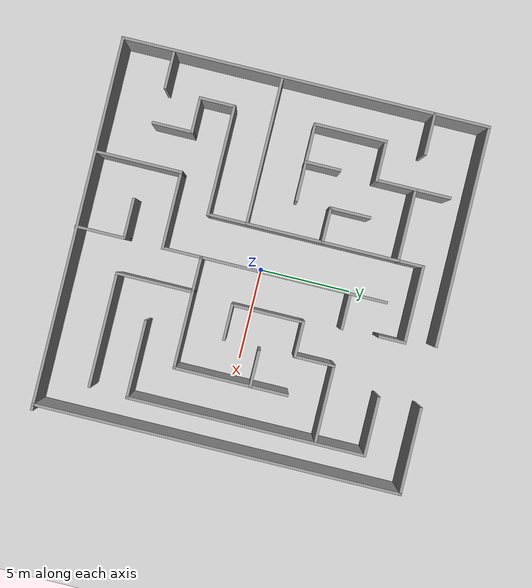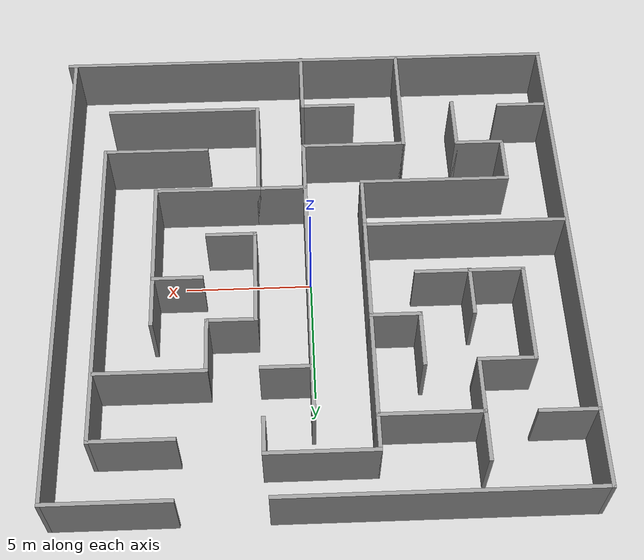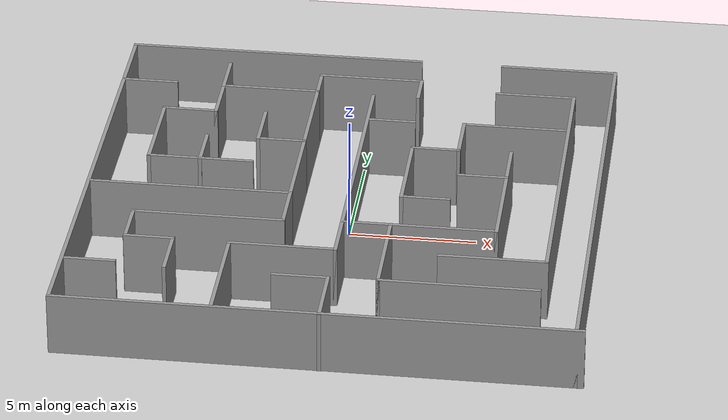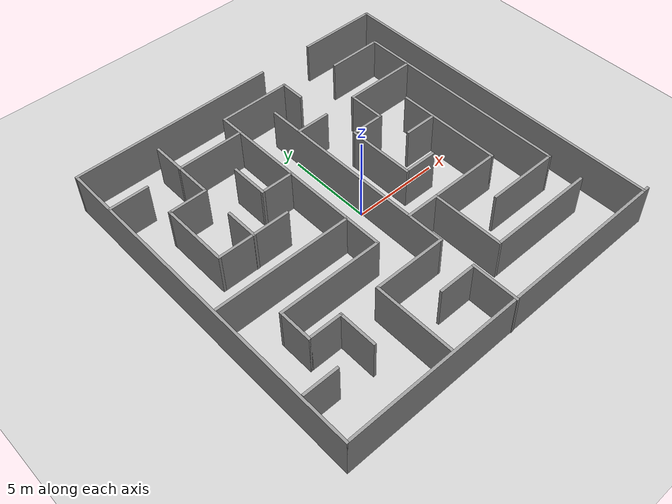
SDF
<sdf version="1.4">
   <world name="default">

     <scene>
       <ambient>0.4 0.4 0.4 1</ambient>
       <background>0.7 0.7 0.7 1</background>
       <shadows>true</shadows>
     </scene>

     <!-- A global light source -->
     <include>
       <uri>model://sun</uri>
     </include>

     <!-- A ground plane -->
     <include>
       <uri>model://ground_plane</uri>
     </include>

     <!-- Maze -->
     <include>
       <uri>model://complex_maze2</uri>
     </include>

     <physics type="ode">
       <real_time_update_rate>1000.0</real_time_update_rate>
       <max_step_size>0.001</max_step_size>
       <real_time_factor>1</real_time_factor>
       <ode>
         <solver>
           <type>quick</type>
           <iters>150</iters>
           <precon_iters>0</precon_iters>
           <sor>1.400000</sor>
           <use_dynamic_moi_rescaling>1</use_dynamic_moi_rescaling>
         </solver>
         <constraints>
           <cfm>0.00001</cfm>
           <erp>0.2</erp>
           <contact_max_correcting_vel>2000.000000</contact_max_correcting_vel>
           <contact_surface_layer>0.01000</contact_surface_layer>
         </constraints>
       </ode>
     </physics>

   </world>

 </sdf>

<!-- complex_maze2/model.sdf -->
<sdf version='1.7'>
  <model name='Untitled'>
    <pose>-0.090093 -0.035228 0 0 -0 0</pose>
    <link name='Wall_11'>
      <collision name='Wall_11_Collision'>
        <geometry>
          <box>
            <size>4 0.15 2.5</size>
          </box>
        </geometry>
        <pose>0 0 1.25 0 -0 0</pose>
      </collision>
      <visual name='Wall_11_Visual'>
        <pose>0 0 1.25 0 -0 0</pose>
        <geometry>
          <box>
            <size>4 0.15 2.5</size>
          </box>
        </geometry>
        <material>
          <script>
            <uri>file://media/materials/scripts/gazebo.material</uri>
            <name>Gazebo/Grey</name>
          </script>
          <ambient>1 1 1 1</ambient>
        </material>
        <meta>
          <layer>0</layer>
        </meta>
      </visual>
      <pose>-4.00531 6.94451 0 0 -0 0</pose>
    </link>
    <link name='Wall_14'>
      <collision name='Wall_14_Collision'>
        <geometry>
          <box>
            <size>2.25 0.15 2.5</size>
          </box>
        </geometry>
        <pose>0 0 1.25 0 -0 0</pose>
      </collision>
      <visual name='Wall_14_Visual'>
        <pose>0 0 1.25 0 -0 0</pose>
        <geometry>
          <box>
            <size>2.25 0.15 2.5</size>
          </box>
        </geometry>
        <material>
          <script>
            <uri>file://media/materials/scripts/gazebo.material</uri>
            <name>Gazebo/Grey</name>
          </script>
          <ambient>1 1 1 1</ambient>
        </material>
        <meta>
          <layer>0</layer>
        </meta>
      </visual>
      <pose>-5.93031 5.89451 0 0 -0 -1.5708</pose>
    </link>
    <link name='Wall_15'>
      <collision name='Wall_15_Collision'>
        <geometry>
          <box>
            <size>2.25 0.15 2.5</size>
          </box>
        </geometry>
        <pose>0 0 1.25 0 -0 0</pose>
      </collision>
      <visual name='Wall_15_Visual'>
        <pose>0 0 1.25 0 -0 0</pose>
        <geometry>
          <box>
            <size>2.25 0.15 2.5</size>
          </box>
        </geometry>
        <material>
          <script>
            <uri>file://media/materials/scripts/gazebo.material</uri>
            <name>Gazebo/Grey</name>
          </script>
          <ambient>1 1 1 1</ambient>
        </material>
        <meta>
          <layer>0</layer>
        </meta>
      </visual>
      <pose>-6.98031 4.84451 0 0 -0 3.14159</pose>
    </link>
    <link name='Wall_16'>
      <collision name='Wall_16_Collision'>
        <geometry>
          <box>
            <size>4 0.15 2.5</size>
          </box>
        </geometry>
        <pose>0 0 1.25 0 -0 0</pose>
      </collision>
      <visual name='Wall_16_Visual'>
        <pose>0 0 1.25 0 -0 0</pose>
        <geometry>
          <box>
            <size>4 0.15 2.5</size>
          </box>
        </geometry>
        <material>
          <script>
            <uri>file://media/materials/scripts/gazebo.material</uri>
            <name>Gazebo/Grey</name>
          </script>
          <ambient>1 1 1 1</ambient>
        </material>
        <meta>
          <layer>0</layer>
        </meta>
      </visual>
      <pose>-8.03031 2.91951 0 0 -0 -1.5708</pose>
    </link>
    <link name='Wall_17'>
      <collision name='Wall_17_Collision'>
        <geometry>
          <box>
            <size>4.25 0.15 2.5</size>
          </box>
        </geometry>
        <pose>0 0 1.25 0 -0 0</pose>
      </collision>
      <visual name='Wall_17_Visual'>
        <pose>0 0 1.25 0 -0 0</pose>
        <geometry>
          <box>
            <size>4.25 0.15 2.5</size>
          </box>
        </geometry>
        <material>
          <script>
            <uri>file://media/materials/scripts/gazebo.material</uri>
            <name>Gazebo/Grey</name>
          </script>
          <ambient>1 1 1 1</ambient>
        </material>
        <meta>
          <layer>0</layer>
        </meta>
      </visual>
      <pose>-5.98031 0.994513 0 0 -0 0</pose>
    </link>
    <link name='Wall_19'>
      <collision name='Wall_19_Collision'>
        <geometry>
          <box>
            <size>2 0.15 2.5</size>
          </box>
        </geometry>
        <pose>0 0 1.25 0 -0 0</pose>
      </collision>
      <visual name='Wall_19_Visual'>
        <pose>0 0 1.25 0 -0 0</pose>
        <geometry>
          <box>
            <size>2 0.15 2.5</size>
          </box>
        </geometry>
        <material>
          <script>
            <uri>file://media/materials/scripts/gazebo.material</uri>
            <name>Gazebo/Grey</name>
          </script>
          <ambient>1 1 1 1</ambient>
        </material>
        <meta>
          <layer>0</layer>
        </meta>
      </visual>
      <pose>-5.98381 1.89982 0 0 -0 -1.5708</pose>
    </link>
    <link name='Wall_2'>
      <collision name='Wall_2_Collision'>
        <geometry>
          <box>
            <size>20 0.15 2.5</size>
          </box>
        </geometry>
        <pose>0 0 1.25 0 -0 0</pose>
      </collision>
      <visual name='Wall_2_Visual'>
        <pose>0 0 1.25 0 -0 0</pose>
        <geometry>
          <box>
            <size>20 0.15 2.5</size>
          </box>
        </geometry>
        <material>
          <script>
            <uri>file://media/materials/scripts/gazebo.material</uri>
            <name>Gazebo/Grey</name>
          </script>
          <ambient>1 1 1 1</ambient>
        </material>
        <meta>
          <layer>0</layer>
        </meta>
      </visual>
      <pose>-10.05 0.015653 0 0 -0 -1.5708</pose>
    </link>
    <link name='Wall_25'>
      <collision name='Wall_25_Collision'>
        <geometry>
          <box>
            <size>4.25 0.15 2.5</size>
          </box>
        </geometry>
        <pose>0 0 1.25 0 -0 0</pose>
      </collision>
      <visual name='Wall_25_Visual'>
        <pose>0 0 1.25 0 -0 0</pose>
        <geometry>
          <box>
            <size>4.25 0.15 2.5</size>
          </box>
        </geometry>
        <material>
          <script>
            <uri>file://media/materials/scripts/gazebo.material</uri>
            <name>Gazebo/Grey</name>
          </script>
          <ambient>1 1 1 1</ambient>
        </material>
        <meta>
          <layer>0</layer>
        </meta>
      </visual>
      <pose>-2.08031 4.89451 0 0 -0 -1.5708</pose>
    </link>
    <link name='Wall_27'>
      <collision name='Wall_27_Collision'>
        <geometry>
          <box>
            <size>2 0.15 2.5</size>
          </box>
        </geometry>
        <pose>0 0 1.25 0 -0 0</pose>
      </collision>
      <visual name='Wall_27_Visual'>
        <pose>0 0 1.25 0 -0 0</pose>
        <geometry>
          <box>
            <size>2 0.15 2.5</size>
          </box>
        </geometry>
        <material>
          <script>
            <uri>file://media/materials/scripts/gazebo.material</uri>
            <name>Gazebo/Grey</name>
          </script>
          <ambient>1 1 1 1</ambient>
        </material>
        <meta>
          <layer>0</layer>
        </meta>
      </visual>
      <pose>-3.00531 2.84451 0 0 -0 3.14159</pose>
    </link>
    <link name='Wall_28'>
      <collision name='Wall_28_Collision'>
        <geometry>
          <box>
            <size>2.25 0.15 2.5</size>
          </box>
        </geometry>
        <pose>0 0 1.25 0 -0 0</pose>
      </collision>
      <visual name='Wall_28_Visual'>
        <pose>0 0 1.25 0 -0 0</pose>
        <geometry>
          <box>
            <size>2.25 0.15 2.5</size>
          </box>
        </geometry>
        <material>
          <script>
            <uri>file://media/materials/scripts/gazebo.material</uri>
            <name>Gazebo/Grey</name>
          </script>
          <ambient>1 1 1 1</ambient>
        </material>
        <meta>
          <layer>0</layer>
        </meta>
      </visual>
      <pose>-3.93031 3.89451 0 0 -0 1.5708</pose>
    </link>
    <link name='Wall_3'>
      <collision name='Wall_3_Collision'>
        <geometry>
          <box>
            <size>20.25 0.15 2.5</size>
          </box>
        </geometry>
        <pose>0 0 1.25 0 -0 0</pose>
      </collision>
      <visual name='Wall_3_Visual'>
        <pose>0 0 1.25 0 -0 0</pose>
        <geometry>
          <box>
            <size>20.25 0.15 2.5</size>
          </box>
        </geometry>
        <material>
          <script>
            <uri>file://media/materials/scripts/gazebo.material</uri>
            <name>Gazebo/Grey</name>
          </script>
          <ambient>1 1 1 1</ambient>
        </material>
        <meta>
          <layer>0</layer>
        </meta>
      </visual>
      <pose>0 -9.90935 0 0 -0 0</pose>
    </link>
    <link name='Wall_30'>
      <collision name='Wall_30_Collision'>
        <geometry>
          <box>
            <size>4.25 0.15 2.5</size>
          </box>
        </geometry>
        <pose>0 0 1.25 0 -0 0</pose>
      </collision>
      <visual name='Wall_30_Visual'>
        <pose>0 0 1.25 0 -0 0</pose>
        <geometry>
          <box>
            <size>4.25 0.15 2.5</size>
          </box>
        </geometry>
        <material>
          <script>
            <uri>file://media/materials/scripts/gazebo.material</uri>
            <name>Gazebo/Grey</name>
          </script>
          <ambient>1 1 1 1</ambient>
        </material>
        <meta>
          <layer>0</layer>
        </meta>
      </visual>
      <pose>-2.08031 0.794513 0 0 -0 -1.5708</pose>
    </link>
    <link name='Wall_31'>
      <collision name='Wall_31_Collision'>
        <geometry>
          <box>
            <size>8 0.15 2.5</size>
          </box>
        </geometry>
        <pose>0 0 1.25 0 -0 0</pose>
      </collision>
      <visual name='Wall_31_Visual'>
        <pose>0 0 1.25 0 -0 0</pose>
        <geometry>
          <box>
            <size>8 0.15 2.5</size>
          </box>
        </geometry>
        <material>
          <script>
            <uri>file://media/materials/scripts/gazebo.material</uri>
            <name>Gazebo/Grey</name>
          </script>
          <ambient>1 1 1 1</ambient>
        </material>
        <meta>
          <layer>0</layer>
        </meta>
      </visual>
      <pose>-6.00531 -1.25549 0 0 -0 3.14159</pose>
    </link>
    <link name='Wall_33'>
      <collision name='Wall_33_Collision'>
        <geometry>
          <box>
            <size>2.25 0.15 2.5</size>
          </box>
        </geometry>
        <pose>0 0 1.25 0 -0 0</pose>
      </collision>
      <visual name='Wall_33_Visual'>
        <pose>0 0 1.25 0 -0 0</pose>
        <geometry>
          <box>
            <size>2.25 0.15 2.5</size>
          </box>
        </geometry>
        <material>
          <script>
            <uri>file://media/materials/scripts/gazebo.material</uri>
            <name>Gazebo/Grey</name>
          </script>
          <ambient>1 1 1 1</ambient>
        </material>
        <meta>
          <layer>0</layer>
        </meta>
      </visual>
      <pose>-2.08031 -2.30549 0 0 -0 -1.5708</pose>
    </link>
    <link name='Wall_34'>
      <collision name='Wall_34_Collision'>
        <geometry>
          <box>
            <size>6 0.15 2.5</size>
          </box>
        </geometry>
        <pose>0 0 1.25 0 -0 0</pose>
      </collision>
      <visual name='Wall_34_Visual'>
        <pose>0 0 1.25 0 -0 0</pose>
        <geometry>
          <box>
            <size>6 0.15 2.5</size>
          </box>
        </geometry>
        <material>
          <script>
            <uri>file://media/materials/scripts/gazebo.material</uri>
            <name>Gazebo/Grey</name>
          </script>
          <ambient>1 1 1 1</ambient>
        </material>
        <meta>
          <layer>0</layer>
        </meta>
      </visual>
      <pose>-5.00531 -3.35549 0 0 -0 3.14159</pose>
    </link>
    <link name='Wall_35'>
      <collision name='Wall_35_Collision'>
        <geometry>
          <box>
            <size>2 0.15 2.5</size>
          </box>
        </geometry>
        <pose>0 0 1.25 0 -0 0</pose>
      </collision>
      <visual name='Wall_35_Visual'>
        <pose>0 0 1.25 0 -0 0</pose>
        <geometry>
          <box>
            <size>2 0.15 2.5</size>
          </box>
        </geometry>
        <material>
          <script>
            <uri>file://media/materials/scripts/gazebo.material</uri>
            <name>Gazebo/Grey</name>
          </script>
          <ambient>1 1 1 1</ambient>
        </material>
        <meta>
          <layer>0</layer>
        </meta>
      </visual>
      <pose>-7.93031 -4.28049 0 0 -0 -1.5708</pose>
    </link>
    <link name='Wall_36'>
      <collision name='Wall_36_Collision'>
        <geometry>
          <box>
            <size>2 0.15 2.5</size>
          </box>
        </geometry>
        <pose>0 0 1.25 0 -0 0</pose>
      </collision>
      <visual name='Wall_36_Visual'>
        <pose>0 0 1.25 0 -0 0</pose>
        <geometry>
          <box>
            <size>2 0.15 2.5</size>
          </box>
        </geometry>
        <material>
          <script>
            <uri>file://media/materials/scripts/gazebo.material</uri>
            <name>Gazebo/Grey</name>
          </script>
          <ambient>1 1 1 1</ambient>
        </material>
        <meta>
          <layer>0</layer>
        </meta>
      </visual>
      <pose>-7.00531 -5.20549 0 0 -0 0</pose>
    </link>
    <link name='Wall_37'>
      <collision name='Wall_37_Collision'>
        <geometry>
          <box>
            <size>2.25 0.15 2.5</size>
          </box>
        </geometry>
        <pose>0 0 1.25 0 -0 0</pose>
      </collision>
      <visual name='Wall_37_Visual'>
        <pose>0 0 1.25 0 -0 0</pose>
        <geometry>
          <box>
            <size>2.25 0.15 2.5</size>
          </box>
        </geometry>
        <material>
          <script>
            <uri>file://media/materials/scripts/gazebo.material</uri>
            <name>Gazebo/Grey</name>
          </script>
          <ambient>1 1 1 1</ambient>
        </material>
        <meta>
          <layer>0</layer>
        </meta>
      </visual>
      <pose>-6.08031 -6.25549 0 0 -0 -1.5708</pose>
    </link>
    <link name='Wall_39'>
      <collision name='Wall_39_Collision'>
        <geometry>
          <box>
            <size>2 0.15 2.5</size>
          </box>
        </geometry>
        <pose>0 0 1.25 0 -0 0</pose>
      </collision>
      <visual name='Wall_39_Visual'>
        <pose>0 0 1.25 0 -0 0</pose>
        <geometry>
          <box>
            <size>2 0.15 2.5</size>
          </box>
        </geometry>
        <material>
          <script>
            <uri>file://media/materials/scripts/gazebo.material</uri>
            <name>Gazebo/Grey</name>
          </script>
          <ambient>1 1 1 1</ambient>
        </material>
        <meta>
          <layer>0</layer>
        </meta>
      </visual>
      <pose>-8.96449 -7.12664 0 0 -0 0</pose>
    </link>
    <link name='Wall_41'>
      <collision name='Wall_41_Collision'>
        <geometry>
          <box>
            <size>2.25 0.15 2.5</size>
          </box>
        </geometry>
        <pose>0 0 1.25 0 -0 0</pose>
      </collision>
      <visual name='Wall_41_Visual'>
        <pose>0 0 1.25 0 -0 0</pose>
        <geometry>
          <box>
            <size>2.25 0.15 2.5</size>
          </box>
        </geometry>
        <material>
          <script>
            <uri>file://media/materials/scripts/gazebo.material</uri>
            <name>Gazebo/Grey</name>
          </script>
          <ambient>1 1 1 1</ambient>
        </material>
        <meta>
          <layer>0</layer>
        </meta>
      </visual>
      <pose>-0.867619 -7.34065 0 0 -0 0</pose>
    </link>
    <link name='Wall_44'>
      <collision name='Wall_44_Collision'>
        <geometry>
          <box>
            <size>2.75 0.15 2.5</size>
          </box>
        </geometry>
        <pose>0 0 1.25 0 -0 0</pose>
      </collision>
      <visual name='Wall_44_Visual'>
        <pose>0 0 1.25 0 -0 0</pose>
        <geometry>
          <box>
            <size>2.75 0.15 2.5</size>
          </box>
        </geometry>
        <material>
          <script>
            <uri>file://media/materials/scripts/gazebo.material</uri>
            <name>Gazebo/Grey</name>
          </script>
          <ambient>1 1 1 1</ambient>
        </material>
        <meta>
          <layer>0</layer>
        </meta>
      </visual>
      <pose>0.182381 -8.64065 0 0 -0 -1.5708</pose>
    </link>
    <link name='Wall_47'>
      <collision name='Wall_47_Collision'>
        <geometry>
          <box>
            <size>4.75 0.15 2.5</size>
          </box>
        </geometry>
        <pose>0 0 1.25 0 -0 0</pose>
      </collision>
      <visual name='Wall_47_Visual'>
        <pose>0 0 1.25 0 -0 0</pose>
        <geometry>
          <box>
            <size>4.75 0.15 2.5</size>
          </box>
        </geometry>
        <material>
          <script>
            <uri>file://media/materials/scripts/gazebo.material</uri>
            <name>Gazebo/Grey</name>
          </script>
          <ambient>1 1 1 1</ambient>
        </material>
        <meta>
          <layer>0</layer>
        </meta>
      </visual>
      <pose>-3.89721 -7.55527 0 0 -0 1.5708</pose>
    </link>
    <link name='Wall_48'>
      <collision name='Wall_48_Collision'>
        <geometry>
          <box>
            <size>4.25 0.15 2.5</size>
          </box>
        </geometry>
        <pose>0 0 1.25 0 -0 0</pose>
      </collision>
      <visual name='Wall_48_Visual'>
        <pose>0 0 1.25 0 -0 0</pose>
        <geometry>
          <box>
            <size>4.25 0.15 2.5</size>
          </box>
        </geometry>
        <material>
          <script>
            <uri>file://media/materials/scripts/gazebo.material</uri>
            <name>Gazebo/Grey</name>
          </script>
          <ambient>1 1 1 1</ambient>
        </material>
        <meta>
          <layer>0</layer>
        </meta>
      </visual>
      <pose>-1.84721 -5.25527 0 0 -0 0</pose>
    </link>
    <link name='Wall_49'>
      <collision name='Wall_49_Collision'>
        <geometry>
          <box>
            <size>12.25 0.15 2.5</size>
          </box>
        </geometry>
        <pose>0 0 1.25 0 -0 0</pose>
      </collision>
      <visual name='Wall_49_Visual'>
        <pose>0 0 1.25 0 -0 0</pose>
        <geometry>
          <box>
            <size>12.25 0.15 2.5</size>
          </box>
        </geometry>
        <material>
          <script>
            <uri>file://media/materials/scripts/gazebo.material</uri>
            <name>Gazebo/Grey</name>
          </script>
          <ambient>1 1 1 1</ambient>
        </material>
        <meta>
          <layer>0</layer>
        </meta>
      </visual>
      <pose>0.202788 0.794728 0 0 -0 1.5708</pose>
    </link>
    <link name='Wall_51'>
      <collision name='Wall_51_Collision'>
        <geometry>
          <box>
            <size>2 0.15 2.5</size>
          </box>
        </geometry>
        <pose>0 0 1.25 0 -0 0</pose>
      </collision>
      <visual name='Wall_51_Visual'>
        <pose>0 0 1.25 0 -0 0</pose>
        <geometry>
          <box>
            <size>2 0.15 2.5</size>
          </box>
        </geometry>
        <material>
          <script>
            <uri>file://media/materials/scripts/gazebo.material</uri>
            <name>Gazebo/Grey</name>
          </script>
          <ambient>1 1 1 1</ambient>
        </material>
        <meta>
          <layer>0</layer>
        </meta>
      </visual>
      <pose>1.14748 4.91142 0 0 -0 0</pose>
    </link>
    <link name='Wall_53'>
      <collision name='Wall_53_Collision'>
        <geometry>
          <box>
            <size>2 0.15 2.5</size>
          </box>
        </geometry>
        <pose>0 0 1.25 0 -0 0</pose>
      </collision>
      <visual name='Wall_53_Visual'>
        <pose>0 0 1.25 0 -0 0</pose>
        <geometry>
          <box>
            <size>2 0.15 2.5</size>
          </box>
        </geometry>
        <material>
          <script>
            <uri>file://media/materials/scripts/gazebo.material</uri>
            <name>Gazebo/Grey</name>
          </script>
          <ambient>1 1 1 1</ambient>
        </material>
        <meta>
          <layer>0</layer>
        </meta>
      </visual>
      <pose>1.14748 -3.16746 0 0 -0 0</pose>
    </link>
    <link name='Wall_54'>
      <collision name='Wall_54_Collision'>
        <geometry>
          <box>
            <size>4.25 0.15 2.5</size>
          </box>
        </geometry>
        <pose>0 0 1.25 0 -0 0</pose>
      </collision>
      <visual name='Wall_54_Visual'>
        <pose>0 0 1.25 0 -0 0</pose>
        <geometry>
          <box>
            <size>4.25 0.15 2.5</size>
          </box>
        </geometry>
        <material>
          <script>
            <uri>file://media/materials/scripts/gazebo.material</uri>
            <name>Gazebo/Grey</name>
          </script>
          <ambient>1 1 1 1</ambient>
        </material>
        <meta>
          <layer>0</layer>
        </meta>
      </visual>
      <pose>2.07248 -5.21746 0 0 -0 -1.5708</pose>
    </link>
    <link name='Wall_55'>
      <collision name='Wall_55_Collision'>
        <geometry>
          <box>
            <size>6.25 0.15 2.5</size>
          </box>
        </geometry>
        <pose>0 0 1.25 0 -0 0</pose>
      </collision>
      <visual name='Wall_55_Visual'>
        <pose>0 0 1.25 0 -0 0</pose>
        <geometry>
          <box>
            <size>6.25 0.15 2.5</size>
          </box>
        </geometry>
        <material>
          <script>
            <uri>file://media/materials/scripts/gazebo.material</uri>
            <name>Gazebo/Grey</name>
          </script>
          <ambient>1 1 1 1</ambient>
        </material>
        <meta>
          <layer>0</layer>
        </meta>
      </visual>
      <pose>5.12248 -7.26746 0 0 -0 0</pose>
    </link>
    <link name='Wall_58'>
      <collision name='Wall_58_Collision'>
        <geometry>
          <box>
            <size>4.25 0.15 2.5</size>
          </box>
        </geometry>
        <pose>0 0 1.25 0 -0 0</pose>
      </collision>
      <visual name='Wall_58_Visual'>
        <pose>0 0 1.25 0 -0 0</pose>
        <geometry>
          <box>
            <size>4.25 0.15 2.5</size>
          </box>
        </geometry>
        <material>
          <script>
            <uri>file://media/materials/scripts/gazebo.material</uri>
            <name>Gazebo/Grey</name>
          </script>
          <ambient>1 1 1 1</ambient>
        </material>
        <meta>
          <layer>0</layer>
        </meta>
      </visual>
      <pose>6.23167 -5.20055 0 0 -0 0</pose>
    </link>
    <link name='Wall_64'>
      <collision name='Wall_64_Collision'>
        <geometry>
          <box>
            <size>4.25 0.15 2.5</size>
          </box>
        </geometry>
        <pose>0 0 1.25 0 -0 0</pose>
      </collision>
      <visual name='Wall_64_Visual'>
        <pose>0 0 1.25 0 -0 0</pose>
        <geometry>
          <box>
            <size>4.25 0.15 2.5</size>
          </box>
        </geometry>
        <material>
          <script>
            <uri>file://media/materials/scripts/gazebo.material</uri>
            <name>Gazebo/Grey</name>
          </script>
          <ambient>1 1 1 1</ambient>
        </material>
        <meta>
          <layer>0</layer>
        </meta>
      </visual>
      <pose>6.14435 4.96492 0 0 -0 3.14159</pose>
    </link>
    <link name='Wall_65'>
      <collision name='Wall_65_Collision'>
        <geometry>
          <box>
            <size>2.25 0.15 2.5</size>
          </box>
        </geometry>
        <pose>0 0 1.25 0 -0 0</pose>
      </collision>
      <visual name='Wall_65_Visual'>
        <pose>0 0 1.25 0 -0 0</pose>
        <geometry>
          <box>
            <size>2.25 0.15 2.5</size>
          </box>
        </geometry>
        <material>
          <script>
            <uri>file://media/materials/scripts/gazebo.material</uri>
            <name>Gazebo/Grey</name>
          </script>
          <ambient>1 1 1 1</ambient>
        </material>
        <meta>
          <layer>0</layer>
        </meta>
      </visual>
      <pose>4.09435 3.91492 0 0 -0 -1.5708</pose>
    </link>
    <link name='Wall_66'>
      <collision name='Wall_66_Collision'>
        <geometry>
          <box>
            <size>2 0.15 2.5</size>
          </box>
        </geometry>
        <pose>0 0 1.25 0 -0 0</pose>
      </collision>
      <visual name='Wall_66_Visual'>
        <pose>0 0 1.25 0 -0 0</pose>
        <geometry>
          <box>
            <size>2 0.15 2.5</size>
          </box>
        </geometry>
        <material>
          <script>
            <uri>file://media/materials/scripts/gazebo.material</uri>
            <name>Gazebo/Grey</name>
          </script>
          <ambient>1 1 1 1</ambient>
        </material>
        <meta>
          <layer>0</layer>
        </meta>
      </visual>
      <pose>3.16935 2.86492 0 0 -0 3.14159</pose>
    </link>
    <link name='Wall_67'>
      <collision name='Wall_67_Collision'>
        <geometry>
          <box>
            <size>4 0.15 2.5</size>
          </box>
        </geometry>
        <pose>0 0 1.25 0 -0 0</pose>
      </collision>
      <visual name='Wall_67_Visual'>
        <pose>0 0 1.25 0 -0 0</pose>
        <geometry>
          <box>
            <size>4 0.15 2.5</size>
          </box>
        </geometry>
        <material>
          <script>
            <uri>file://media/materials/scripts/gazebo.material</uri>
            <name>Gazebo/Grey</name>
          </script>
          <ambient>1 1 1 1</ambient>
        </material>
        <meta>
          <layer>0</layer>
        </meta>
      </visual>
      <pose>2.24435 0.939921 0 0 -0 -1.5708</pose>
    </link>
    <link name='Wall_68'>
      <collision name='Wall_68_Collision'>
        <geometry>
          <box>
            <size>2 0.15 2.5</size>
          </box>
        </geometry>
        <pose>0 0 1.25 0 -0 0</pose>
      </collision>
      <visual name='Wall_68_Visual'>
        <pose>0 0 1.25 0 -0 0</pose>
        <geometry>
          <box>
            <size>2 0.15 2.5</size>
          </box>
        </geometry>
        <material>
          <script>
            <uri>file://media/materials/scripts/gazebo.material</uri>
            <name>Gazebo/Grey</name>
          </script>
          <ambient>1 1 1 1</ambient>
        </material>
        <meta>
          <layer>0</layer>
        </meta>
      </visual>
      <pose>3.16935 -0.985079 0 0 -0 0</pose>
    </link>
    <link name='Wall_7'>
      <collision name='Wall_7_Collision'>
        <geometry>
          <box>
            <size>20 0.15 2.5</size>
          </box>
        </geometry>
        <pose>0 0 1.25 0 -0 0</pose>
      </collision>
      <visual name='Wall_7_Visual'>
        <pose>0 0 1.25 0 -0 0</pose>
        <geometry>
          <box>
            <size>20 0.15 2.5</size>
          </box>
        </geometry>
        <material>
          <script>
            <uri>file://media/materials/scripts/gazebo.material</uri>
            <name>Gazebo/Grey</name>
          </script>
          <ambient>1 1 1 1</ambient>
        </material>
        <meta>
          <layer>0</layer>
        </meta>
      </visual>
      <pose>9.8 0.015653 0 0 -0 -1.5708</pose>
    </link>
    <link name='Wall_73'>
      <collision name='Wall_73_Collision'>
        <geometry>
          <box>
            <size>2 0.15 2.5</size>
          </box>
        </geometry>
        <pose>0 0 1.25 0 -0 0</pose>
      </collision>
      <visual name='Wall_73_Visual'>
        <pose>0 0 1.25 0 -0 0</pose>
        <geometry>
          <box>
            <size>2 0.15 2.5</size>
          </box>
        </geometry>
        <material>
          <script>
            <uri>file://media/materials/scripts/gazebo.material</uri>
            <name>Gazebo/Grey</name>
          </script>
          <ambient>1 1 1 1</ambient>
        </material>
        <meta>
          <layer>0</layer>
        </meta>
      </visual>
      <pose>-5.93031 7.86951 0 0 -0 1.5708</pose>
    </link>
    <link name='Wall_81'>
      <collision name='Wall_81_Collision'>
        <geometry>
          <box>
            <size>4.25 0.15 2.5</size>
          </box>
        </geometry>
        <pose>0 0 1.25 0 -0 0</pose>
      </collision>
      <visual name='Wall_81_Visual'>
        <pose>0 0 1.25 0 -0 0</pose>
        <geometry>
          <box>
            <size>4.25 0.15 2.5</size>
          </box>
        </geometry>
        <material>
          <script>
            <uri>file://media/materials/scripts/gazebo.material</uri>
            <name>Gazebo/Grey</name>
          </script>
          <ambient>1 1 1 1</ambient>
        </material>
        <meta>
          <layer>0</layer>
        </meta>
      </visual>
      <pose>4.12248 -3.16746 0 0 -0 0</pose>
    </link>
    <link name='Wall_82'>
      <collision name='Wall_82_Collision'>
        <geometry>
          <box>
            <size>6.25 0.15 2.5</size>
          </box>
        </geometry>
        <pose>0 0 1.25 0 -0 0</pose>
      </collision>
      <visual name='Wall_82_Visual'>
        <pose>0 0 1.25 0 -0 0</pose>
        <geometry>
          <box>
            <size>6.25 0.15 2.5</size>
          </box>
        </geometry>
        <material>
          <script>
            <uri>file://media/materials/scripts/gazebo.material</uri>
            <name>Gazebo/Grey</name>
          </script>
          <ambient>1 1 1 1</ambient>
        </material>
        <meta>
          <layer>0</layer>
        </meta>
      </visual>
      <pose>6.17248 -0.117459 0 0 -0 1.5708</pose>
    </link>
    <link name='Wall_84'>
      <collision name='Wall_84_Collision'>
        <geometry>
          <box>
            <size>2 0.15 2.5</size>
          </box>
        </geometry>
        <pose>0 0 1.25 0 -0 0</pose>
      </collision>
      <visual name='Wall_84_Visual'>
        <pose>0 0 1.25 0 -0 0</pose>
        <geometry>
          <box>
            <size>2 0.15 2.5</size>
          </box>
        </geometry>
        <material>
          <script>
            <uri>file://media/materials/scripts/gazebo.material</uri>
            <name>Gazebo/Grey</name>
          </script>
          <ambient>1 1 1 1</ambient>
        </material>
        <meta>
          <layer>0</layer>
        </meta>
      </visual>
      <pose>5.23626 0.952233 0 0 -0 3.14159</pose>
    </link>
    <link name='Wall_86'>
      <collision name='Wall_86_Collision'>
        <geometry>
          <box>
            <size>1.5 0.15 2.5</size>
          </box>
        </geometry>
        <pose>0 0 1.25 0 -0 0</pose>
      </collision>
      <visual name='Wall_86_Visual'>
        <pose>0 0 1.25 0 -0 0</pose>
        <geometry>
          <box>
            <size>1.5 0.15 2.5</size>
          </box>
        </geometry>
        <material>
          <script>
            <uri>file://media/materials/scripts/gazebo.material</uri>
            <name>Gazebo/Grey</name>
          </script>
          <ambient>1 1 1 1</ambient>
        </material>
        <meta>
          <layer>0</layer>
        </meta>
      </visual>
      <pose>-2.08031 7.61951 0 0 -0 1.5708</pose>
    </link>
    <link name='Wall_87'>
      <collision name='Wall_87_Collision'>
        <geometry>
          <box>
            <size>4.25 0.15 2.5</size>
          </box>
        </geometry>
        <pose>0 0 1.25 0 -0 0</pose>
      </collision>
      <visual name='Wall_87_Visual'>
        <pose>0 0 1.25 0 -0 0</pose>
        <geometry>
          <box>
            <size>4.25 0.15 2.5</size>
          </box>
        </geometry>
        <material>
          <script>
            <uri>file://media/materials/scripts/gazebo.material</uri>
            <name>Gazebo/Grey</name>
          </script>
          <ambient>1 1 1 1</ambient>
        </material>
        <meta>
          <layer>0</layer>
        </meta>
      </visual>
      <pose>-0.030307 8.29451 0 0 -0 0</pose>
    </link>
    <link name='Wall_89'>
      <collision name='Wall_89_Collision'>
        <geometry>
          <box>
            <size>1.5 0.15 2.5</size>
          </box>
        </geometry>
        <pose>0 0 1.25 0 -0 0</pose>
      </collision>
      <visual name='Wall_89_Visual'>
        <pose>0 0 1.25 0 -0 0</pose>
        <geometry>
          <box>
            <size>1.5 0.15 2.5</size>
          </box>
        </geometry>
        <material>
          <script>
            <uri>file://media/materials/scripts/gazebo.material</uri>
            <name>Gazebo/Grey</name>
          </script>
          <ambient>1 1 1 1</ambient>
        </material>
        <meta>
          <layer>0</layer>
        </meta>
      </visual>
      <pose>2.01969 7.61951 0 0 -0 -1.5708</pose>
    </link>
    <link name='Wall_9'>
      <collision name='Wall_9_Collision'>
        <geometry>
          <box>
            <size>2.25 0.15 2.5</size>
          </box>
        </geometry>
        <pose>0 0 1.25 0 -0 0</pose>
      </collision>
      <visual name='Wall_9_Visual'>
        <pose>0 0 1.25 0 -0 0</pose>
        <geometry>
          <box>
            <size>2.25 0.15 2.5</size>
          </box>
        </geometry>
        <material>
          <script>
            <uri>file://media/materials/scripts/gazebo.material</uri>
            <name>Gazebo/Grey</name>
          </script>
          <ambient>1 1 1 1</ambient>
        </material>
        <meta>
          <layer>0</layer>
        </meta>
      </visual>
      <pose>-8.9465 6.99802 0 0 -0 0</pose>
    </link>
    <link name='Wall_91'>
      <collision name='Wall_91_Collision'>
        <geometry>
          <box>
            <size>13 0.15 2.5</size>
          </box>
        </geometry>
        <pose>0 0 1.25 0 -0 0</pose>
      </collision>
      <visual name='Wall_91_Visual'>
        <pose>0 0 1.25 0 -0 0</pose>
        <geometry>
          <box>
            <size>13 0.15 2.5</size>
          </box>
        </geometry>
        <material>
          <script>
            <uri>file://media/materials/scripts/gazebo.material</uri>
            <name>Gazebo/Grey</name>
          </script>
          <ambient>1 1 1 1</ambient>
        </material>
        <meta>
          <layer>0</layer>
        </meta>
      </visual>
      <pose>8.28167 1.22445 0 0 -0 1.5708</pose>
    </link>
    <link name='Wall_92'>
      <collision name='Wall_92_Collision'>
        <geometry>
          <box>
            <size>3.25 0.15 2.5</size>
          </box>
        </geometry>
        <pose>0 0 1.25 0 -0 0</pose>
      </collision>
      <visual name='Wall_92_Visual'>
        <pose>0 0 1.25 0 -0 0</pose>
        <geometry>
          <box>
            <size>3.25 0.15 2.5</size>
          </box>
        </geometry>
        <material>
          <script>
            <uri>file://media/materials/scripts/gazebo.material</uri>
            <name>Gazebo/Grey</name>
          </script>
          <ambient>1 1 1 1</ambient>
        </material>
        <meta>
          <layer>0</layer>
        </meta>
      </visual>
      <pose>6.73167 7.64945 0 0 -0 3.14159</pose>
    </link>
    <link name='Wall_94'>
      <collision name='Wall_94_Collision'>
        <geometry>
          <box>
            <size>4.75 0.15 2.5</size>
          </box>
        </geometry>
        <pose>0 0 1.25 0 -0 0</pose>
      </collision>
      <visual name='Wall_94_Visual'>
        <pose>0 0 1.25 0 -0 0</pose>
        <geometry>
          <box>
            <size>4.75 0.15 2.5</size>
          </box>
        </geometry>
        <material>
          <script>
            <uri>file://media/materials/scripts/gazebo.material</uri>
            <name>Gazebo/Grey</name>
          </script>
          <ambient>1 1 1 1</ambient>
        </material>
        <meta>
          <layer>0</layer>
        </meta>
      </visual>
      <pose>7.5 9.94065 0 0 -0 3.14159</pose>
    </link>
    <link name='Wall_96'>
      <collision name='Wall_96_Collision'>
        <geometry>
          <box>
            <size>12 0.15 2.5</size>
          </box>
        </geometry>
        <pose>0 0 1.25 0 -0 0</pose>
      </collision>
      <visual name='Wall_96_Visual'>
        <pose>0 0 1.25 0 -0 0</pose>
        <geometry>
          <box>
            <size>12 0.15 2.5</size>
          </box>
        </geometry>
        <material>
          <script>
            <uri>file://media/materials/scripts/gazebo.material</uri>
            <name>Gazebo/Grey</name>
          </script>
          <ambient>1 1 1 1</ambient>
        </material>
        <meta>
          <layer>0</layer>
        </meta>
      </visual>
      <pose>-4.125 9.94065 0 0 -0 0</pose>
    </link>
    <static>1</static>
  </model>
</sdf>
